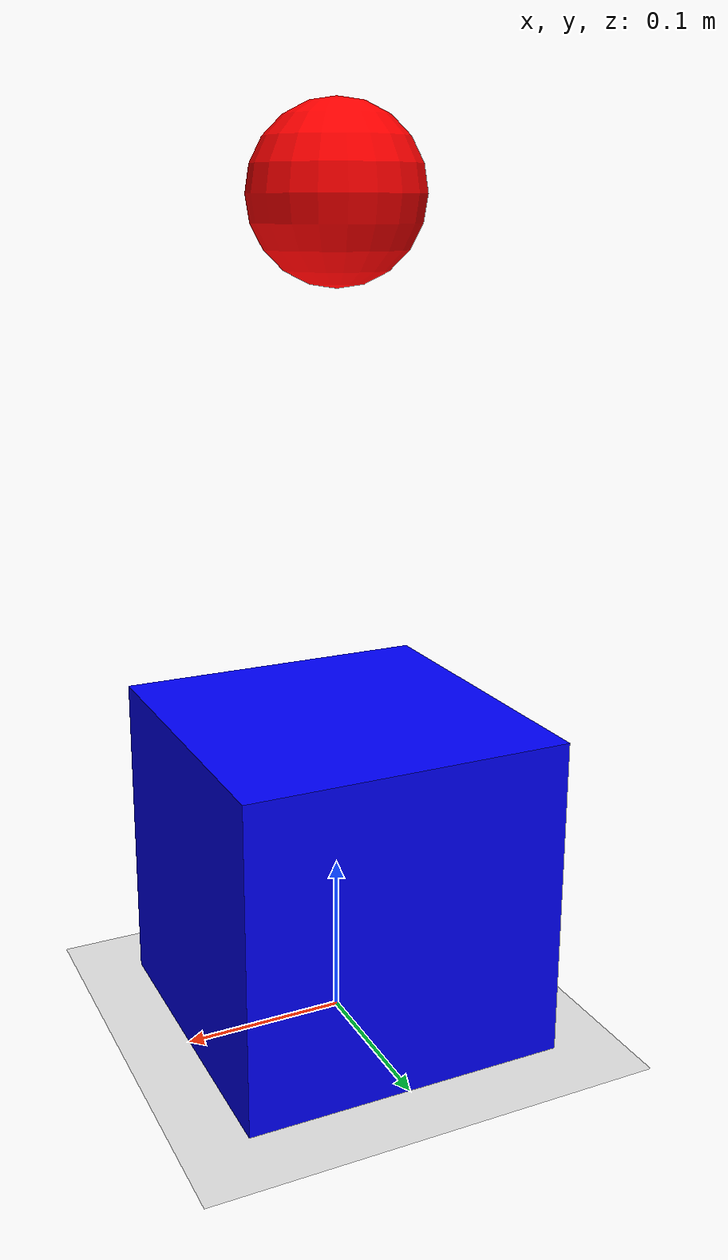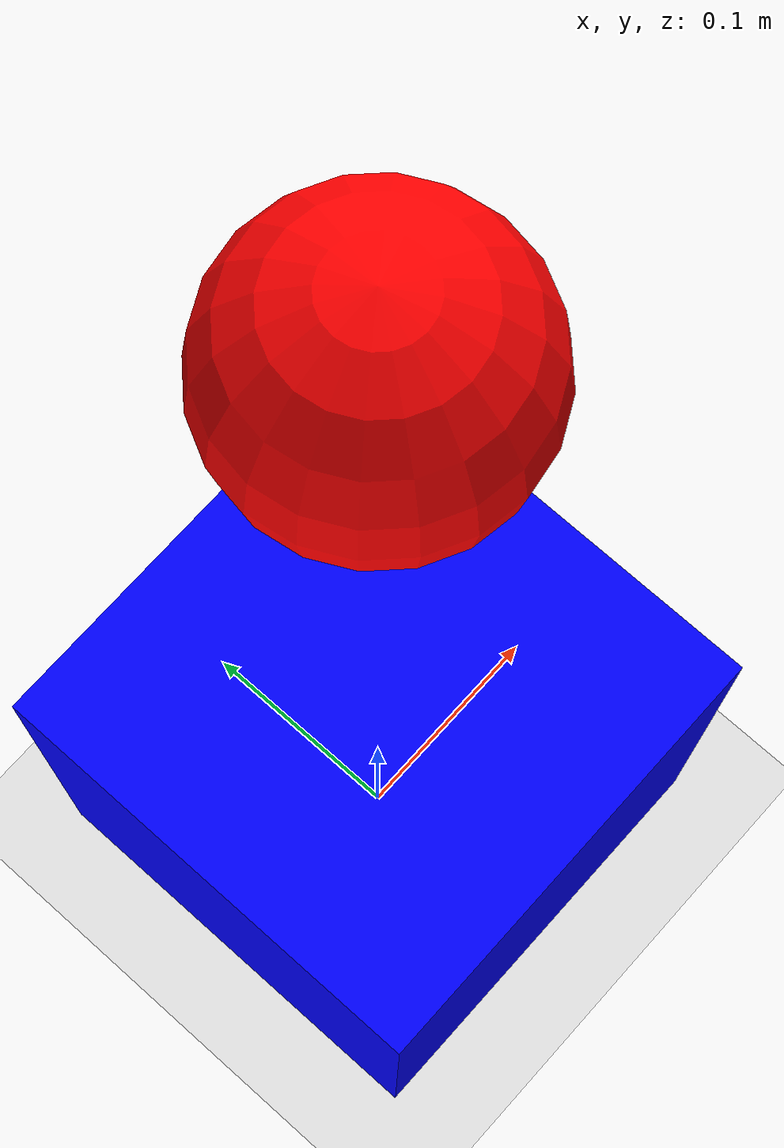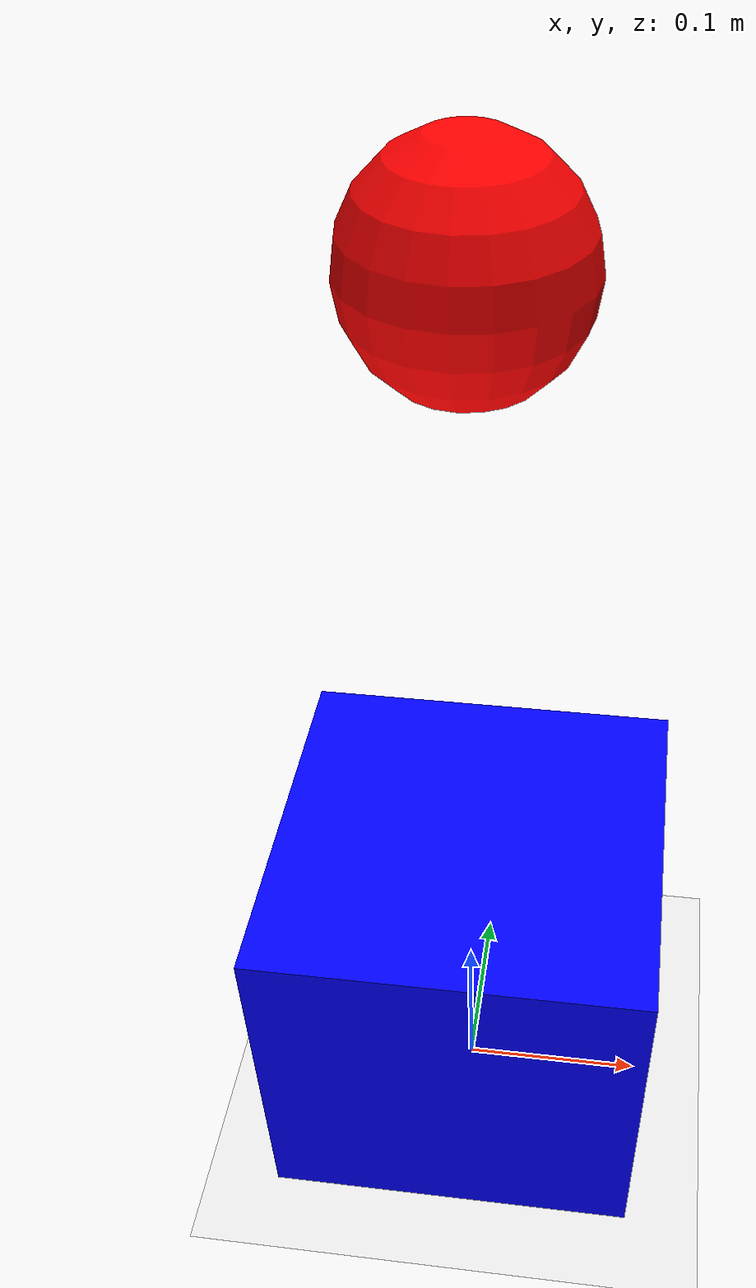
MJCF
<mujoco>
  <option gravity="0 0 -9.81"/>

  <worldbody>
    <!-- Flat ground -->
    <body name="ground" pos="0 0 0">
      <geom type="plane" size="1 1 0.01" rgba="0.9 0.9 0.9 1"
            contype="0" conaffinity="0"/>
    </body>

    <!-- Free ball falling onto a box -->
    <body name="ball_body" pos="0 0 0.5">
      <joint name="ball_free" type="free"/>
      <geom name="ball" type="sphere" size="0.05" density="1000"
            contype="1" conaffinity="1" rgba="1 0 0 1"/>
    </body>

    <body name="block" pos="0 0 0.1">
      <geom name="block_geom" type="box" size="0.1 0.1 0.1"
            contype="1" conaffinity="1" rgba="0 0 1 1"/>
    </body>
  </worldbody>
</mujoco>
